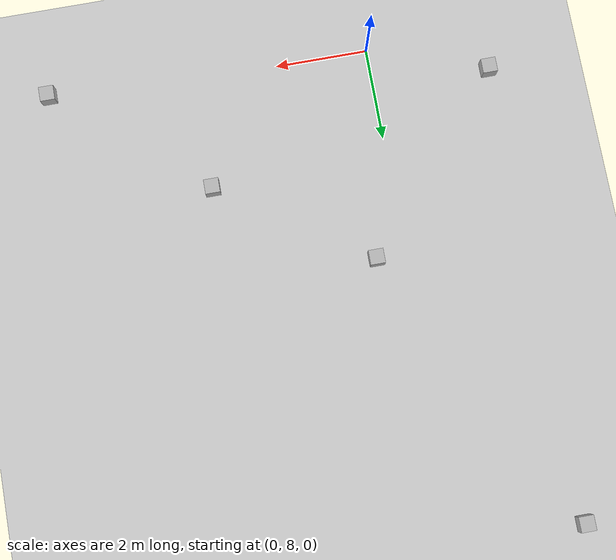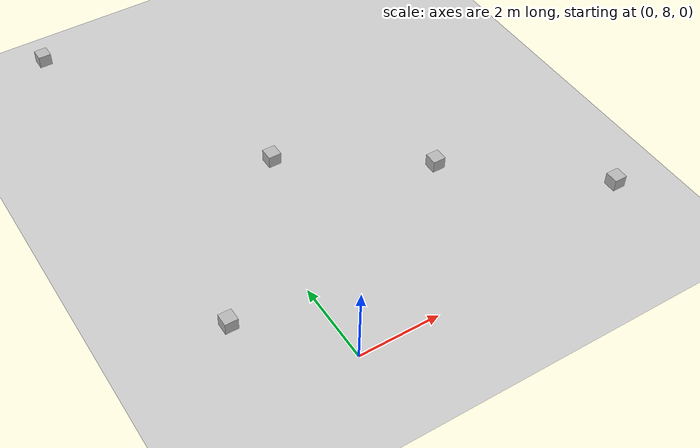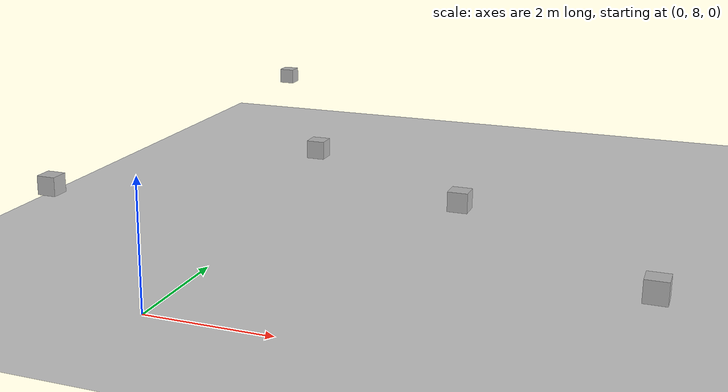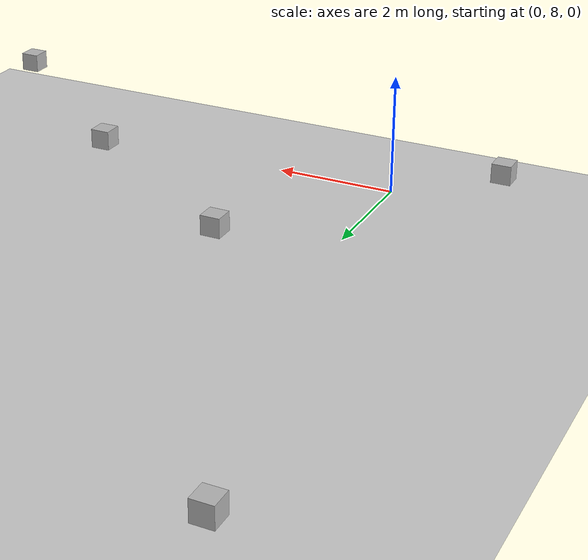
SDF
<?xml version='1.0' ?>
<sdf version='1.4'>
  <world name='chefy_arm'>
    <!-- A global light source -->
    <include>
      <uri>model://sun</uri>
    </include>

    <!-- A ground plane -->
    <include>
      <uri>model://ground_plane</uri>
    </include>

    <!-- Table -->
    <!-- Beer -->
    <!-- Note that the beer object has slip issues on the table. -->

    <!-- Coke can -->
    <include>
      <uri>model://cube</uri>
      <pose>0.75 0.25 1.05 0 0 0</pose>
    </include>

    <!-- Physics settings for simulation -->
    <physics type='ode'>
      <max_step_size>0.001</max_step_size>
      <real_time_factor>1</real_time_factor>
      <real_time_update_rate>1000</real_time_update_rate>
      <gravity>0 0 -9.81</gravity>
    </physics>
  </world>
</sdf>

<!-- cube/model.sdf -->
<sdf version="1.5">
    <model name="cube">
        <static>true</static>
        <link name="link">
            <collision name="collision1">
                <pose>0 12.5 0.1 0 0 0</pose>
                <geometry>
                    <mesh>
                        <uri>model://cube/meshes/cube.dae</uri>
                    </mesh>
                </geometry>
            </collision>
            <visual name="visual1">

              <pose>0 12.5 0.1 0 0 0</pose>
              <geometry>
              <mesh>
                 <uri>model://cube/meshes/cube.dae</uri>
              </mesh>
              </geometry>

              <material>
                  <script>
                      <uri>model://cube/materials/scripts</uri>
                      <uri>model://cube/materials/textures</uri>
                      <name>cubeMat/Diffuse</name>
                  </script>
              </material>
             </visual>

             <collision name="collision2">
                <pose>3 10.5 0.1 0 0 0</pose>
                <geometry>
                    <mesh>
                        <uri>model://cube/meshes/cube.dae</uri>
                    </mesh>
                </geometry>
            </collision>
            <visual name="visual2">

              <pose>3 10.5 0.1 0 0 0</pose>
              <geometry>
              <mesh>
                 <uri>model://cube/meshes/cube.dae</uri>
              </mesh>
              </geometry>

              <material>
                  <script>
                      <uri>model://cube/materials/scripts</uri>
                      <uri>model://cube/materials/textures</uri>
                      <name>cubeMat/Diffuse</name>
                  </script>
              </material>
             </visual>

             <collision name="collision3">
                <pose>-3 9 0.1 0 0 0</pose>
                <geometry>
                    <mesh>
                        <uri>model://cube/meshes/cube.dae</uri>
                    </mesh>
                </geometry>
            </collision>
            <visual name="visual3">

              <pose>-3 9 0.1 0 0 0</pose>
              <geometry>
              <mesh>
                 <uri>model://cube/meshes/cube.dae</uri>
              </mesh>
              </geometry>

              <material>
                  <script>
                      <uri>model://cube/materials/scripts</uri>
                      <uri>model://cube/materials/textures</uri>
                      <name>cubeMat/Diffuse</name>
                  </script>
              </material>
             </visual>

             <collision name="collision4">
                <pose>6 8 0.1 0 0 0</pose>
                <geometry>
                    <mesh>
                        <uri>model://cube/meshes/cube.dae</uri>
                    </mesh>
                </geometry>
            </collision>
            <visual name="visual4">

              <pose>6 8 0.1 0 0 0</pose>
              <geometry>
              <mesh>
                 <uri>model://cube/meshes/cube.dae</uri>
              </mesh>
              </geometry>

              <material>
                  <script>
                      <uri>model://cube/materials/scripts</uri>
                      <uri>model://cube/materials/textures</uri>
                      <name>cubeMat/Diffuse</name>
                  </script>
              </material>
             </visual>

             <collision name="collision5">
                <pose>-3 18.3 0.1 0 0 0</pose>
                <geometry>
                    <mesh>
                        <uri>model://cube/meshes/cube.dae</uri>
                    </mesh>
                </geometry>
            </collision>
            <visual name="visual5">

              <pose>-3 18.3 0.1 0 0 0</pose>
              <geometry>
              <mesh>
                 <uri>model://cube/meshes/cube.dae</uri>
              </mesh>
              </geometry>

              <material>
                  <script>
                      <uri>model://cube/materials/scripts</uri>
                      <uri>model://cube/materials/textures</uri>
                      <name>cubeMat/Diffuse</name>
                  </script>
              </material>
             </visual>
        </link>
    </model>
</sdf>
